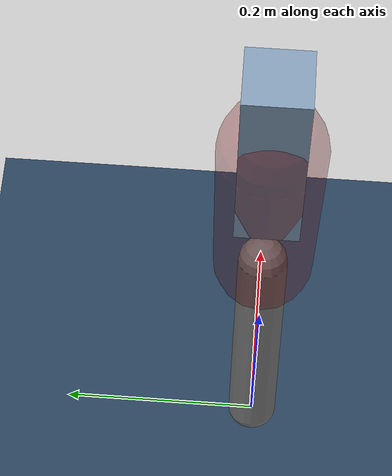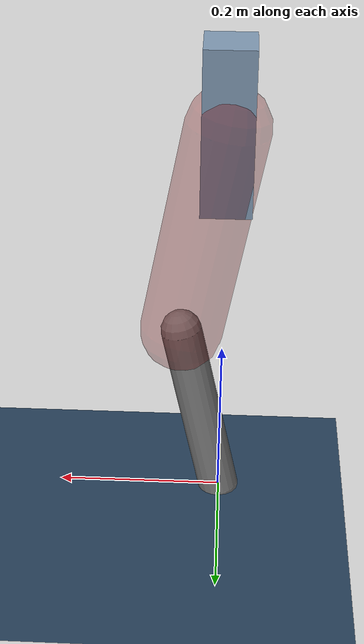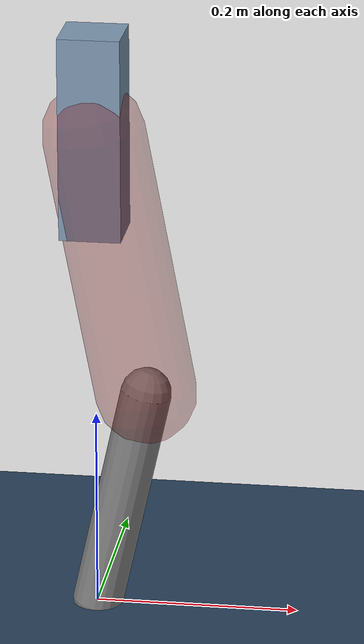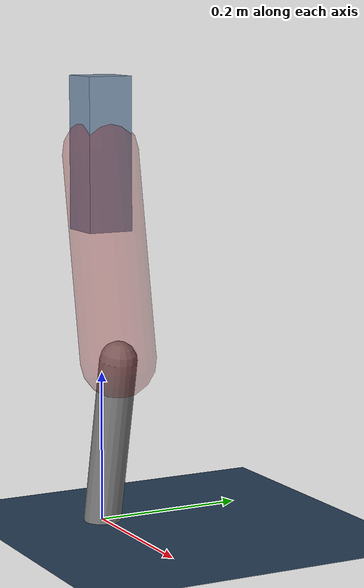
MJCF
<mujoco model="Hopper2D">
	<compiler inertiafromgeom="true" angle="radian" />
	<option timestep="0.001" integrator="implicit" cone="elliptic" solver="Newton" tolerance="1e-10" />

	<default>
		<geom contype="1" conaffinity="1" condim="3" friction="2 0.005 0.0001" solref="0.005 1" />
		<joint limited="true" damping="0.1" />
	</default>

	<asset>
		<texture name="skybox" type="skybox" builtin="gradient" rgb1=".4 .6 .8" rgb2="0 0 0" width="800" height="800" />
		<texture name="grid" type="2d" builtin="checker" rgb1=".1 .2 .3" rgb2=".2 .3 .4" width="300" height="300" mark="edge" markrgb=".2 .3 .4" />
		<material name="ground" texture="grid" texrepeat="1 1" texuniform="true" reflectance="0.1" />
		<material name="leg" rgba="0.5 0.6 0.7 1" />
	</asset>

	<worldbody>

		<geom name="floor" type="plane" size="5 5 0.25" material="ground" />

		<light directional="false" diffuse="0.8 0.8 0.8" specular="0.3 0.3 0.3" pos="0 0 2" dir="0 0 -1" />
		<light mode="targetbodycom" target="base" directional="false" diffuse="0.8 0.8 0.8" specular="0.3 0.3 0.3" pos="0 0 2" dir="0 0 -1" />

		<camera name="fixed" pos="0 -2 1" xyaxes="1 0 0 0 0 1" />
		<camera name="tracking" mode="trackcom" pos="0 -3 1" />

		<body name="root" pos="0 0 0.4895128357458889">
			<joint name="slide_x" type="slide" axis="1 0 0" range="-100 100" />
			<joint name="slide_z" type="slide" axis="0 0 1" range="0 10" />

			<body name="base" pos="0 0 0">
				<geom name="torso" type="box" size="0.03 0.03 0.1" mass="3.262" material="leg" />

				<body name="link1" pos="0 0 0" euler="0 1.3853455420833747 0">
					<joint type="hinge" axis="0 -1 0" pos="0 0 0" name="hinge1" limited="true" range="-3.14 3.14" stiffness="0" damping="0.1" />
					<geom name="thigh" type="capsule" fromto="0 0 0 0.26885101868435807 0 0" size="0.05" rgba="0.5 0 0 0.3" mass="0.905612648579331" />

					<body name="link2" pos="0.26885101868435807 0 0" euler="0 0.4020584626589556 0">
						<joint type="hinge" axis="0 -1 0" pos="0 0 0" name="hinge2" limited="true" range="-3.14 3.14" stiffness="0" damping="0.1" />
						<geom name="shank" type="capsule" fromto="0 0 0 0.23066181706153083 0 0" size="0.025" mass="0.4265294536492247" />

					</body>
				</body>
			</body>
		</body>
	</worldbody>

	<actuator>
		<motor name="torque1" joint="hinge1" ctrlrange="-143.95781734785376 143.95781734785376" ctrllimited="true" gear="1" />
		<motor name="torque2" joint="hinge2" ctrlrange="-119.20728797266187 119.20728797266187" ctrllimited="true" gear="1" />
	</actuator>
</mujoco>
